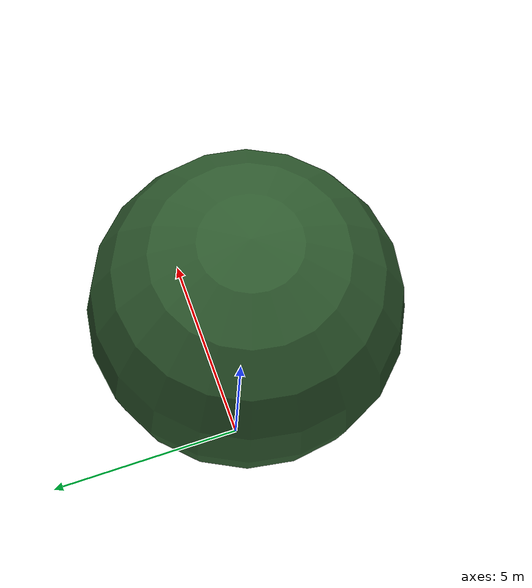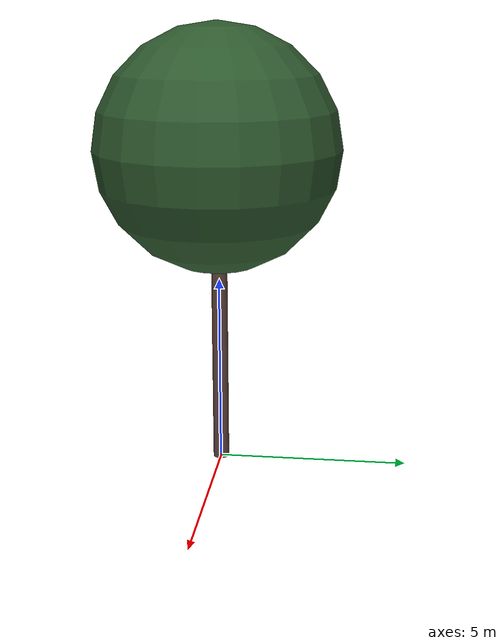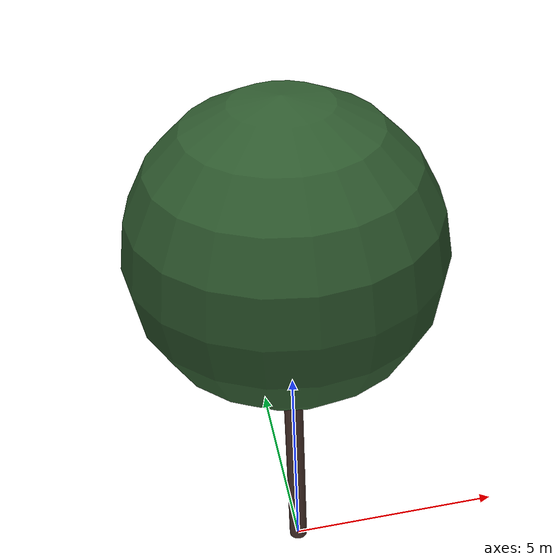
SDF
<?xml version="1.0" ?>
<sdf version="1.10">
  <model name="pin_parasol_14">
    <static>true</static>

    <!-- Tronc -->
    <link name="trunk">
      <pose>0 0 3.751099235371585 0 0 0</pose>
      <visual name="trunk_visual">
        <geometry>
          <cylinder>
            <radius>0.2098805137411401</radius>
            <length>7.50219847074317</length>
          </cylinder>
        </geometry>
        <material>
          <ambient>0.36 0.25 0.22 1</ambient>
          <diffuse>0.36 0.25 0.22 1</diffuse>
          <specular>0.1 0.1 0.1 1</specular>
        </material>
      </visual>
      <collision name="trunk_collision">
        <geometry>
          <cylinder>
            <radius>0.2098805137411401</radius>
            <length>7.50219847074317</length>
          </cylinder>
        </geometry>
      </collision>
    </link>

    <!-- Feuillage -->
    <link name="crown">
      <pose>0 0 8.459920003564536 0 0 0</pose>
      <visual name="crown_visual">
        <geometry>
          <sphere>
              <radius>3.1924051094045507</radius>
            </sphere>
        </geometry>
        <material>
          <ambient>0.18 0.35 0.18 1</ambient>
          <diffuse>0.18 0.35 0.18 1</diffuse>
          <specular>0.1 0.1 0.1 1</specular>
        </material>
      </visual>
      <collision name="crown_collision">
        <geometry>
          <sphere>
            <radius>2.5539240875236406</radius>
          </sphere>
        </geometry>
      </collision>
    </link>

    <!-- Joint tronc-feuillage -->
    <joint name="trunk_crown_joint" type="fixed">
      <parent>trunk</parent>
      <child>crown</child>
    </joint>

  </model>
</sdf>
